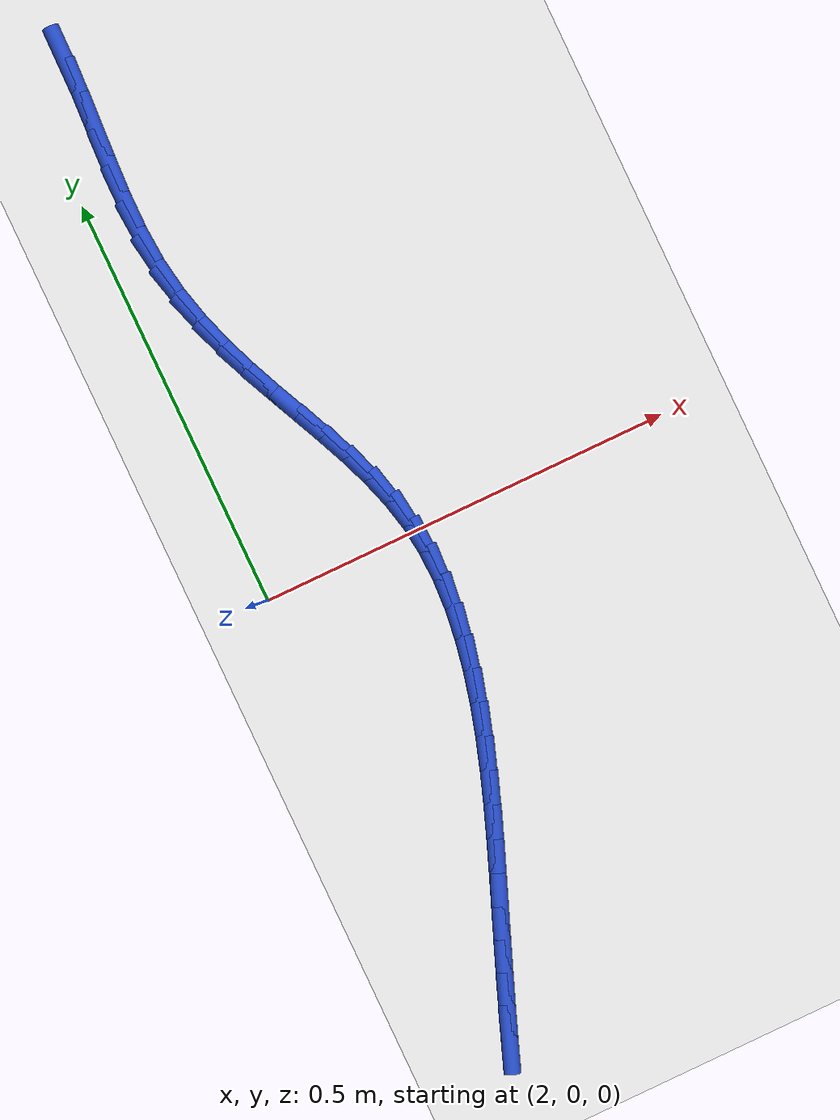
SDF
<sdf version="1.6">
 <world name="default">
  <model name="ground_plane">
   <static>1</static>
   <link name="link">
    <collision name="collision">
     <geometry><plane><normal>0 0 1</normal><size>100 100</size></plane></geometry>
     <surface><friction><ode><mu>100</mu><mu2>50</mu2></ode></friction></surface>
    </collision>
    <visual name="visual">
     <cast_shadows>0</cast_shadows>
     <geometry><plane><normal>0 0 1</normal><size>100 100</size></plane></geometry>
     <material>
      <script><uri>file://media/materials/scripts/gazebo.material</uri><name>Gazebo/WhiteGlow</name></script>
     </material>
    </visual>
   </link>
  </model>
  <model name="line">
   <link name="link_82">
    <pose>2.054556255472804 0.6603048260072684 0.01 0 1.57 1.556571866380279</pose>
    <collision name="collision">
     <geometry><cylinder><radius>0.01</radius><length>0.08</length></cylinder></geometry>
    </collision>
    <visual name="visual">
     <material>
      <script><name>Gazebo/Blue</name><uri>file://media/materials/scripts/gazebo.material</uri></script>
     </material>
     <geometry><cylinder><radius>0.01</radius><length>0.08</length></cylinder></geometry>
    </visual>
   </link>
   <link name="link_83">
    <pose>2.0539750984441985 0.6194514076736762 0.01 0 1.57 1.5203582585861493</pose>
    <collision name="collision">
     <geometry><cylinder><radius>0.01</radius><length>0.08</length></cylinder></geometry>
    </collision>
    <visual name="visual">
     <material>
      <script><name>Gazebo/Blue</name><uri>file://media/materials/scripts/gazebo.material</uri></script>
     </material>
     <geometry><cylinder><radius>0.01</radius><length>0.08</length></cylinder></geometry>
    </visual>
   </link>
   <link name="link_84">
    <pose>2.05181396732047 0.576640525908202 0.01 0 1.57 1.5114379027978273</pose>
    <collision name="collision">
     <geometry><cylinder><radius>0.01</radius><length>0.08</length></cylinder></geometry>
    </collision>
    <visual name="visual">
     <material>
      <script><name>Gazebo/Blue</name><uri>file://media/materials/scripts/gazebo.material</uri></script>
     </material>
     <geometry><cylinder><radius>0.01</radius><length>0.08</length></cylinder></geometry>
    </visual>
   </link>
   <link name="link_85">
    <pose>2.049201869564295 0.5326867107916295 0.01 0 1.57 1.5271483655812426</pose>
    <collision name="collision">
     <geometry><cylinder><radius>0.01</radius><length>0.08</length></cylinder></geometry>
    </collision>
    <visual name="visual">
     <material>
      <script><name>Gazebo/Blue</name><uri>file://media/materials/scripts/gazebo.material</uri></script>
     </material>
     <geometry><cylinder><radius>0.01</radius><length>0.08</length></cylinder></geometry>
    </visual>
   </link>
   <link name="link_86">
    <pose>2.047267812638349 0.48840449240474404 0.01 0 1.57 1.567896335667312</pose>
    <collision name="collision">
     <geometry><cylinder><radius>0.01</radius><length>0.08</length></cylinder></geometry>
    </collision>
    <visual name="visual">
     <material>
      <script><name>Gazebo/Blue</name><uri>file://media/materials/scripts/gazebo.material</uri></script>
     </material>
     <geometry><cylinder><radius>0.01</radius><length>0.08</length></cylinder></geometry>
    </visual>
   </link>
   <link name="link_87">
    <pose>2.0471408040053087 0.44460840082833 0.01 0 1.57 -1.5047940726689377</pose>
    <collision name="collision">
     <geometry><cylinder><radius>0.01</radius><length>0.08</length></cylinder></geometry>
    </collision>
    <visual name="visual">
     <material>
      <script><name>Gazebo/Blue</name><uri>file://media/materials/scripts/gazebo.material</uri></script>
     </material>
     <geometry><cylinder><radius>0.01</radius><length>0.08</length></cylinder></geometry>
    </visual>
   </link>
   <link name="link_88">
    <pose>2.0499496849202568 0.40211286801115576 0.01 0 1.57 -1.4122829446639886</pose>
    <collision name="collision">
     <geometry><cylinder><radius>0.01</radius><length>0.08</length></cylinder></geometry>
    </collision>
    <visual name="visual">
     <material>
      <script><name>Gazebo/Blue</name><uri>file://media/materials/scripts/gazebo.material</uri></script>
     </material>
     <geometry><cylinder><radius>0.01</radius><length>0.08</length></cylinder></geometry>
    </visual>
   </link>
   <link name="link_89">
    <pose>2.0564407966702554 0.36150649089513004 0.01 0 1.57 -1.3255267446114598</pose>
    <collision name="collision">
     <geometry><cylinder><radius>0.01</radius><length>0.08</length></cylinder></geometry>
    </collision>
    <visual name="visual">
     <material>
      <script><name>Gazebo/Blue</name><uri>file://media/materials/scripts/gazebo.material</uri></script>
     </material>
     <geometry><cylinder><radius>0.01</radius><length>0.08</length></cylinder></geometry>
    </visual>
   </link>
   <link name="link_90">
    <pose>2.066161877355393 0.3226701890846902 0.01 0 1.57 -1.253309019116301</pose>
    <collision name="collision">
     <geometry><cylinder><radius>0.01</radius><length>0.08</length></cylinder></geometry>
    </collision>
    <visual name="visual">
     <material>
      <script><name>Gazebo/Blue</name><uri>file://media/materials/scripts/gazebo.material</uri></script>
     </material>
     <geometry><cylinder><radius>0.01</radius><length>0.08</length></cylinder></geometry>
    </visual>
   </link>
   <link name="link_91">
    <pose>2.078426512640861 0.2853466342858082 0.01 0 1.57 -1.19761249318054</pose>
    <collision name="collision">
     <geometry><cylinder><radius>0.01</radius><length>0.08</length></cylinder></geometry>
    </collision>
    <visual name="visual">
     <material>
      <script><name>Gazebo/Blue</name><uri>file://media/materials/scripts/gazebo.material</uri></script>
     </material>
     <geometry><cylinder><radius>0.01</radius><length>0.08</length></cylinder></geometry>
    </visual>
   </link>
   <link name="link_92">
    <pose>2.092548288191849 0.24927849820445558 0.01 0 1.57 -1.1595985969832299</pose>
    <collision name="collision">
     <geometry><cylinder><radius>0.01</radius><length>0.08</length></cylinder></geometry>
    </collision>
    <visual name="visual">
     <material>
      <script><name>Gazebo/Blue</name><uri>file://media/materials/scripts/gazebo.material</uri></script>
     </material>
     <geometry><cylinder><radius>0.01</radius><length>0.08</length></cylinder></geometry>
    </visual>
   </link>
   <link name="link_93">
    <pose>2.107840789673546 0.21420845254660403 0.01 0 1.57 -1.1400100394786399</pose>
    <collision name="collision">
     <geometry><cylinder><radius>0.01</radius><length>0.08</length></cylinder></geometry>
    </collision>
    <visual name="visual">
     <material>
      <script><name>Gazebo/Blue</name><uri>file://media/materials/scripts/gazebo.material</uri></script>
     </material>
     <geometry><cylinder><radius>0.01</radius><length>0.08</length></cylinder></geometry>
    </visual>
   </link>
   <link name="link_94">
    <pose>2.1236176027511404 0.17987916901822526 0.01 0 1.57 -1.139520559735272</pose>
    <collision name="collision">
     <geometry><cylinder><radius>0.01</radius><length>0.08</length></cylinder></geometry>
    </collision>
    <visual name="visual">
     <material>
      <script><name>Gazebo/Blue</name><uri>file://media/materials/scripts/gazebo.material</uri></script>
     </material>
     <geometry><cylinder><radius>0.01</radius><length>0.08</length></cylinder></geometry>
    </visual>
   </link>
   <link name="link_95">
    <pose>2.1391923130898225 0.14603331932529096 0.01 0 1.57 -1.1589463752693376</pose>
    <collision name="collision">
     <geometry><cylinder><radius>0.01</radius><length>0.08</length></cylinder></geometry>
    </collision>
    <visual name="visual">
     <material>
      <script><name>Gazebo/Blue</name><uri>file://media/materials/scripts/gazebo.material</uri></script>
     </material>
     <geometry><cylinder><radius>0.01</radius><length>0.08</length></cylinder></geometry>
    </visual>
   </link>
   <link name="link_96">
    <pose>2.1538785063547827 0.11241357517377322 0.01 0 1.57 -1.1992656868256821</pose>
    <collision name="collision">
     <geometry><cylinder><radius>0.01</radius><length>0.08</length></cylinder></geometry>
    </collision>
    <visual name="visual">
     <material>
      <script><name>Gazebo/Blue</name><uri>file://media/materials/scripts/gazebo.material</uri></script>
     </material>
     <geometry><cylinder><radius>0.01</radius><length>0.08</length></cylinder></geometry>
    </visual>
   </link>
   <link name="link_97">
    <pose>2.1669897682112085 0.07876260826964299 0.01 0 1.57 -1.2613801826593007</pose>
    <collision name="collision">
     <geometry><cylinder><radius>0.01</radius><length>0.08</length></cylinder></geometry>
    </collision>
    <visual name="visual">
     <material>
      <script><name>Gazebo/Blue</name><uri>file://media/materials/scripts/gazebo.material</uri></script>
     </material>
     <geometry><cylinder><radius>0.01</radius><length>0.08</length></cylinder></geometry>
    </visual>
   </link>
   <link name="link_98">
    <pose>2.17783968432429 0.044823090318872244 0.01 0 1.57 -1.3455401422657338</pose>
    <collision name="collision">
     <geometry><cylinder><radius>0.01</radius><length>0.08</length></cylinder></geometry>
    </collision>
    <visual name="visual">
     <material>
      <script><name>Gazebo/Blue</name><uri>file://media/materials/scripts/gazebo.material</uri></script>
     </material>
     <geometry><cylinder><radius>0.01</radius><length>0.08</length></cylinder></geometry>
    </visual>
   </link>
   <link name="link_99">
    <pose>2.185741840359218 0.010337693027432815 0.01 0 1.57 -1.4458545425197764</pose>
    <collision name="collision">
     <geometry><cylinder><radius>0.01</radius><length>0.08</length></cylinder></geometry>
    </collision>
    <visual name="visual">
     <material>
      <script><name>Gazebo/Blue</name><uri>file://media/materials/scripts/gazebo.material</uri></script>
     </material>
     <geometry><cylinder><radius>0.01</radius><length>0.08</length></cylinder></geometry>
    </visual>
   </link>
   <link name="link_100">
    <pose>2.1901666395495 -0.024892721286866256 0.01 0 1.57 -1.5403806437630014</pose>
    <collision name="collision">
     <geometry><cylinder><radius>0.01</radius><length>0.08</length></cylinder></geometry>
    </collision>
    <visual name="visual">
     <material>
      <script><name>Gazebo/Blue</name><uri>file://media/materials/scripts/gazebo.material</uri></script>
     </material>
     <geometry><cylinder><radius>0.01</radius><length>0.08</length></cylinder></geometry>
    </visual>
   </link>
   <link name="link_101">
    <pose>2.1912596308715573 -0.06081676261164472 0.01 0 1.57 1.5184695679938562</pose>
    <collision name="collision">
     <geometry><cylinder><radius>0.01</radius><length>0.08</length></cylinder></geometry>
    </collision>
    <visual name="visual">
     <material>
      <script><name>Gazebo/Blue</name><uri>file://media/materials/scripts/gazebo.material</uri></script>
     </material>
     <geometry><cylinder><radius>0.01</radius><length>0.08</length></cylinder></geometry>
    </visual>
   </link>
   <link name="link_102">
    <pose>2.1893480181970135 -0.09731563388562801 0.01 0 1.57 1.4472501192193539</pose>
    <collision name="collision">
     <geometry><cylinder><radius>0.01</radius><length>0.08</length></cylinder></geometry>
    </collision>
    <visual name="visual">
     <material>
      <script><name>Gazebo/Blue</name><uri>file://media/materials/scripts/gazebo.material</uri></script>
     </material>
     <geometry><cylinder><radius>0.01</radius><length>0.08</length></cylinder></geometry>
    </visual>
   </link>
   <link name="link_103">
    <pose>2.1847590078844803 -0.1342705371246906 0.01 0 1.57 1.3868235945004177</pose>
    <collision name="collision">
     <geometry><cylinder><radius>0.01</radius><length>0.08</length></cylinder></geometry>
    </collision>
    <visual name="visual">
     <material>
      <script><name>Gazebo/Blue</name><uri>file://media/materials/scripts/gazebo.material</uri></script>
     </material>
     <geometry><cylinder><radius>0.01</radius><length>0.08</length></cylinder></geometry>
    </visual>
   </link>
   <link name="link_104">
    <pose>2.177819806292568 -0.17156267434470718 0.01 0 1.57 1.3362687318888598</pose>
    <collision name="collision">
     <geometry><cylinder><radius>0.01</radius><length>0.08</length></cylinder></geometry>
    </collision>
    <visual name="visual">
     <material>
      <script><name>Gazebo/Blue</name><uri>file://media/materials/scripts/gazebo.material</uri></script>
     </material>
     <geometry><cylinder><radius>0.01</radius><length>0.08</length></cylinder></geometry>
    </visual>
   </link>
   <link name="link_105">
    <pose>2.168857619779887 -0.2090732475615523 0.01 0 1.57 1.2946565173140845</pose>
    <collision name="collision">
     <geometry><cylinder><radius>0.01</radius><length>0.08</length></cylinder></geometry>
    </collision>
    <visual name="visual">
     <material>
      <script><name>Gazebo/Blue</name><uri>file://media/materials/scripts/gazebo.material</uri></script>
     </material>
     <geometry><cylinder><radius>0.01</radius><length>0.08</length></cylinder></geometry>
    </visual>
   </link>
   <link name="link_106">
    <pose>2.1581996547050477 -0.24668345879110054 0.01 0 1.57 1.2611561031226477</pose>
    <collision name="collision">
     <geometry><cylinder><radius>0.01</radius><length>0.08</length></cylinder></geometry>
    </collision>
    <visual name="visual">
     <material>
      <script><name>Gazebo/Blue</name><uri>file://media/materials/scripts/gazebo.material</uri></script>
     </material>
     <geometry><cylinder><radius>0.01</radius><length>0.08</length></cylinder></geometry>
    </visual>
   </link>
   <link name="link_107">
    <pose>2.1461731174266605 -0.2842745100492265 0.01 0 1.57 1.2350894483977854</pose>
    <collision name="collision">
     <geometry><cylinder><radius>0.01</radius><length>0.08</length></cylinder></geometry>
    </collision>
    <visual name="visual">
     <material>
      <script><name>Gazebo/Blue</name><uri>file://media/materials/scripts/gazebo.material</uri></script>
     </material>
     <geometry><cylinder><radius>0.01</radius><length>0.08</length></cylinder></geometry>
    </visual>
   </link>
   <link name="link_108">
    <pose>2.1331052143033364 -0.3217276033518047 0.01 0 1.57 1.215957311740464</pose>
    <collision name="collision">
     <geometry><cylinder><radius>0.01</radius><length>0.08</length></cylinder></geometry>
    </collision>
    <visual name="visual">
     <material>
      <script><name>Gazebo/Blue</name><uri>file://media/materials/scripts/gazebo.material</uri></script>
     </material>
     <geometry><cylinder><radius>0.01</radius><length>0.08</length></cylinder></geometry>
    </visual>
   </link>
   <link name="link_109">
    <pose>2.119323151693686 -0.35892394071470984 0.01 0 1.57 1.2034527299226663</pose>
    <collision name="collision">
     <geometry><cylinder><radius>0.01</radius><length>0.08</length></cylinder></geometry>
    </collision>
    <visual name="visual">
     <material>
      <script><name>Gazebo/Blue</name><uri>file://media/materials/scripts/gazebo.material</uri></script>
     </material>
     <geometry><cylinder><radius>0.01</radius><length>0.08</length></cylinder></geometry>
    </visual>
   </link>
   <link name="link_110">
    <pose>2.1051541359563193 -0.39574472415381645 0.01 0 1.57 1.197472466000652</pose>
    <collision name="collision">
     <geometry><cylinder><radius>0.01</radius><length>0.08</length></cylinder></geometry>
    </collision>
    <visual name="visual">
     <material>
      <script><name>Gazebo/Blue</name><uri>file://media/materials/scripts/gazebo.material</uri></script>
     </material>
     <geometry><cylinder><radius>0.01</radius><length>0.08</length></cylinder></geometry>
    </visual>
   </link>
   <link name="link_111">
    <pose>2.09092535835515 -0.43207116774325366 0.01 0 1.57 1.1970884104170032</pose>
    <collision name="collision">
     <geometry><cylinder><radius>0.01</radius><length>0.08</length></cylinder></geometry>
    </collision>
    <visual name="visual">
     <material>
      <script><name>Gazebo/Blue</name><uri>file://media/materials/scripts/gazebo.material</uri></script>
     </material>
     <geometry><cylinder><radius>0.01</radius><length>0.08</length></cylinder></geometry>
    </visual>
   </link>
   <link name="link_112">
    <pose>2.0769012569649647 -0.4678346153405961 0.01 0 1.57 1.1990544661668627</pose>
    <collision name="collision">
     <geometry><cylinder><radius>0.01</radius><length>0.08</length></cylinder></geometry>
    </collision>
    <visual name="visual">
     <material>
      <script><name>Gazebo/Blue</name><uri>file://media/materials/scripts/gazebo.material</uri></script>
     </material>
     <geometry><cylinder><radius>0.01</radius><length>0.08</length></cylinder></geometry>
    </visual>
   </link>
   <link name="link_113">
    <pose>2.0631403458183044 -0.5031309112501393 0.01 0 1.57 1.2027322960130318</pose>
    <collision name="collision">
     <geometry><cylinder><radius>0.01</radius><length>0.08</length></cylinder></geometry>
    </collision>
    <visual name="visual">
     <material>
      <script><name>Gazebo/Blue</name><uri>file://media/materials/scripts/gazebo.material</uri></script>
     </material>
     <geometry><cylinder><radius>0.01</radius><length>0.08</length></cylinder></geometry>
    </visual>
   </link>
   <link name="link_114">
    <pose>2.049658963862199 -0.5380895909388563 0.01 0 1.57 1.208145122497887</pose>
    <collision name="collision">
     <geometry><cylinder><radius>0.01</radius><length>0.08</length></cylinder></geometry>
    </collision>
    <visual name="visual">
     <material>
      <script><name>Gazebo/Blue</name><uri>file://media/materials/scripts/gazebo.material</uri></script>
     </material>
     <geometry><cylinder><radius>0.01</radius><length>0.08</length></cylinder></geometry>
    </visual>
   </link>
   <link name="link_115">
    <pose>2.0364734500436805 -0.57284018987372 0.01 0 1.57 1.2152842493217384</pose>
    <collision name="collision">
     <geometry><cylinder><radius>0.01</radius><length>0.08</length></cylinder></geometry>
    </collision>
    <visual name="visual">
     <material>
      <script><name>Gazebo/Blue</name><uri>file://media/materials/scripts/gazebo.material</uri></script>
     </material>
     <geometry><cylinder><radius>0.01</radius><length>0.08</length></cylinder></geometry>
    </visual>
   </link>
  </model>
 </world>
</sdf>
